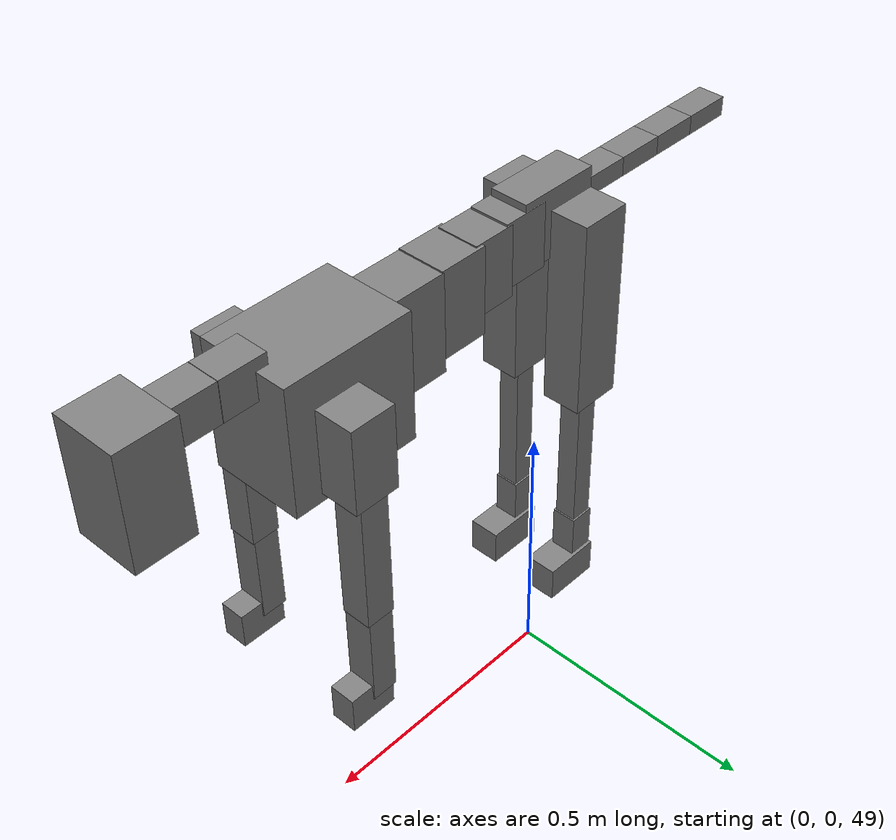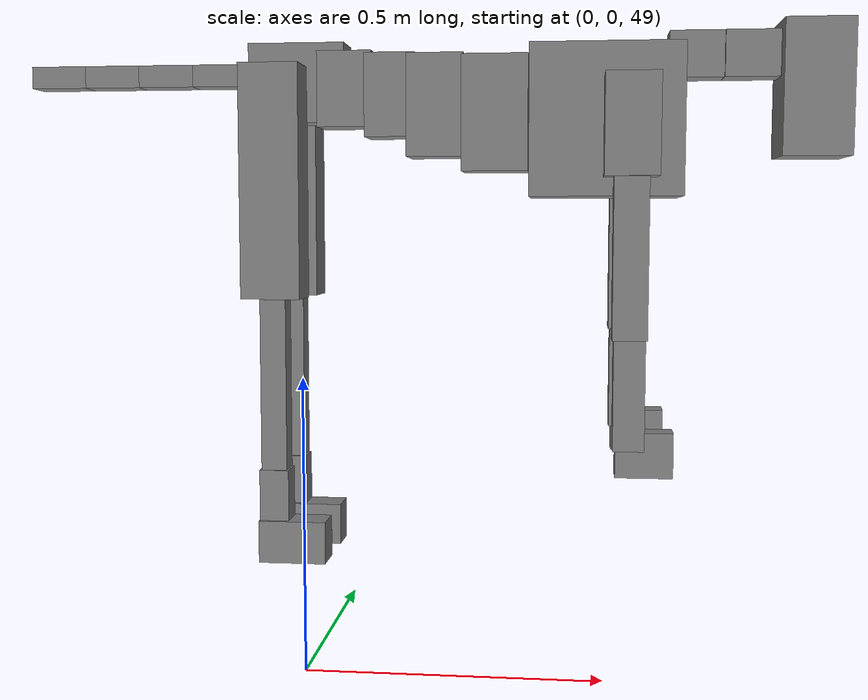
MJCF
<mujoco model="dog">

    <default>
        <joint armature="0.02" stiffness="1" damping="0.2" limited="true"/>
        <geom condim="3" friction="1 0.05 0.05" margin="0.01"/>
        <motor ctrllimited="true" ctrlrange="-1.0 1.0" forcelimited="true" gear="50"/>
    </default>

    <compiler inertiafromgeom="true" angle="radian"/>

    <option timestep="0.016" iterations="50" tolerance="1e-10" solver="Newton" jacobian="dense" cone="pyramidal"/>

    <size nconmax="20000" njmax="60000" nstack="5000000"/>
    <visual>
        <map force="0.1" zfar="30"/>
        <rgba haze="0.15 0.25 0.35 1"/>
        <quality shadowsize="2048"/>
        <global offwidth="800" offheight="800"/>
    </visual>

    <asset>
        <texture type="skybox" builtin="gradient" rgb1="0.3 0.5 0.7" rgb2="0 0 0" width="512" height="512"/>
        <texture name="texplane" type="2d" builtin="checker" rgb1=".2 .3 .4" rgb2=".1 0.15 0.2" width="512" height="512"
                 mark="cross" markrgb=".8 .8 .8"/>
        <texture name="texgeom" type="cube" builtin="flat" mark="cross" width="127" height="1278" rgb1="0.8 0.6 0.4"
                 rgb2="0.8 0.6 0.4" markrgb="1 1 1" random="0.01"/>

        <material name="matplane" reflectance="0.3" texture="texplane" texrepeat="1 1" texuniform="true"/>
        <material name="matgeom" texture="texgeom" texuniform="true" rgba="0.8 0.6 .4 1"/>
    </asset>

    <worldbody>
        <geom name="floor" pos="0 0 0" size="0 0 .25" type="plane" material="matplane" condim="3"/>

        <light directional="false" diffuse=".2 .2 .2" specular="0 0 0" pos="0 0 5" dir="0 0 -1" castshadow="false"/>
        <light mode="targetbodycom" target="torso" directional="false" diffuse=".8 .8 .8" specular="0.3 0.3 0.3"
               pos="0 0 4.0" dir="0 0 -1"/>

        <body name="root" pos="0 0 50">
            <freejoint name="root_1"/>
            <geom type="box" pos="0 0 -0.02" size="0.0774  0.0358  0.063" density="2030"/>

            <body name="spine1" pos="0.054 0 0">
                <joint name="spine1_y" axis="0 1 0" range="0 0.7" limited="true"/>
                <geom type="box" pos="0.02375 0 -0.03" size="0.04375  0.0375  0.05985" density="2030"/>

                <body name="spine2" pos="0.0612 0 0">
                    <joint name="spine2_y" axis="0 1 0" range="-0.15 0.15" limited="true"/>
                    <geom type="box" pos="0.03555  0  -0.04" size="0.04055  0.039  0.06615" density="2030"/>

                    <body name="spine3" pos="0.0730 0 0">
                        <joint name="spine3_y" axis="0 1 0" range="-0.15 0.15" limited="true"/>
                        <geom type="box" pos="0.03555  0  -0.057" size="0.04555  0.0445  0.081" density="2030"/>

                        <body name="spine4" pos="0.0780 0 0">
                            <joint name="spine4_y" axis="0 1 0" range="-0.15 0.15" limited="true"/>
                            <geom type="box" pos="0.05265  0  -0.07" size="0.05265  0.045  0.09135" density="2030"/>

                            <body name="torso" pos="0.1082 0 0">
                                <joint name="torso_y" axis="0 1 0" range="-0.15 0.15" limited="true"/>
                                <geom type="box" pos="0.11925  0  -0.085" size="0.11925  0.085  0.11745"
                                      density="2030"/>

                                <body name="neck1" pos="0.2160  0   0.0180">
                                    <joint name="neck1_y" axis="0 1 0" range="-1.2  -1" limited="true"/>
                                    <geom type="box" pos="0.0423  0  0" size="0.0423  0.03  0.036" density="2325"/>

                                    <body name="neck2" pos="0.0853  0  0">
                                        <joint name="neck2_y" axis="0 1 0" range="0.1  0" limited="true"/>
                                        <geom type="box" pos="0.0423  0  0" size="0.0423  0.03  0.036" density="2325"/>

                                        <body name="head" pos="0.0853  0  0">
                                            <joint name="head_y" axis="0 1 0" range="-0.3  -0.2" limited="true"/>
                                            <geom type="box" pos="0.0531  0  -0.055" size="0.0531  0.06  0.1044"
                                                  density="4030"/>

                                        </body>
                                    </body>
                                </body>

                                <body name="front_shoulder" pos="0.156  0   -0.0480">
                                    <joint name="front_shoulder_y" axis="0 1 0" range="-1 1.5" limited="true"/>
                                    <geom type="box" pos="0 0.13 -0.0498" size="0.0412  0.0352  0.0764" density="1158"/>
                                    <geom type="box" pos="0 -0.13 -0.0498" size="0.0412  0.0352  0.0764"
                                          density="1158"/>

                                    <body name="front_elbow" pos="0  0  -0.0996">
                                        <joint name="front_elbow_y" axis="0 1 0" range="-2 0" limited="true"/>
                                        <geom type="box" pos="0 0.13 -0.1363" size="0.0264  0.0270  0.1363"
                                              density="1081"/>
                                        <geom type="box" pos="0 -0.13 -0.1363" size="0.0264  0.0270  0.1363"
                                              density="1081"/>

                                        <body name="front_wrist" pos="0  0  -0.2727">
                                            <joint name="front_wrist_y" axis="0 1 0" range="-0.2 0" limited="true"/>
                                            <geom type="box" pos="0 0.13 -0.0771" size="0.0238  0.0265  0.0902"
                                                  density="1664"/>
                                            <geom type="box" pos="0 -0.13 -0.0771" size="0.0238  0.0265  0.0902"
                                                  density="1664"/>

                                            <body name="front_finger_end" pos="0  0  -0.1541">
                                                <joint name="front_finger_y" axis="0 1 0" range="-0.4 1"
                                                       limited="true"/>
                                                <geom type="box" pos="0.0238  0.13  -0.0194"
                                                      size="0.0436  0.0238  0.0344" density="1515"/>
                                                <geom type="box" pos="0.0238  -0.13  -0.0194"
                                                      size="0.0436  0.0238  0.0344" density="1515"/>

                                            </body>

                                        </body>
                                    </body>
                                </body>

                            </body>
                        </body>
                    </body>
                </body>
            </body>

            <body name="back_hip" pos="-0.03 0 -0.018">
                <joint name="back_hip_y" axis="0 1 0" range="-1.5 0.3" limited="true"/>
                <geom type="box" pos="0 0.07 -0.1613" size="0.0473  0.0371  0.1841" density="1154"/>
                <geom type="box" pos="0 -0.07 -0.1613" size="0.0473  0.0371  0.1841" density="1154"/>

                <body name="back_knee" pos="0  0  -0.3226">
                    <joint name="back_knee_y" axis="0 1 0" range="0 2.8" limited="true"/>
                    <geom type="box" pos="0 0.07 -0.1547" size="0.0206  0.0203  0.1702" density="1227"/>
                    <geom type="box" pos="0 -0.07 -0.1547" size="0.0206  0.0203  0.1702" density="1227"/>

                    <body name="back_ankle" pos="0  0  -0.3094">
                        <joint name="back_ankle_y" axis="0 1 0" range="-2.2 0" limited="true"/>
                        <geom type="box" pos="0 0.07 -0.0430" size="0.0235  0.0235  0.0542" density="1284"/>
                        <geom type="box" pos="0 -0.07 -0.0430" size="0.0235  0.0235  0.0542" density="1284"/>

                        <body name="back_toe_end" pos="0  0  -0.0859">
                            <joint name="back_toe_y" axis="0 1 0" range="-0.4 1" limited="true"/>
                            <geom type="box" pos="0.0296  0.07  -0.0190" size="0.0542  0.0296  0.0340" density="1515"/>
                            <geom type="box" pos="0.0296  -0.07  -0.0190" size="0.0542  0.0296  0.0340" density="1515"/>

                        </body>
                    </body>
                </body>
            </body>

            <body name="tail1" pos="-0.074 0 -0.006">
                <joint name="tail1_y" axis="0 1 0" range="-0.2 0.2" limited="true"/>
                <geom type="box" pos="-0.0536  0  0" size="0.045  0.025  0.0175" density="1587"/>

                <body name="tail2" pos="-0.09 0 0">
                    <joint name="tail2_y" axis="0 1 0" range="-0.2 0.2" limited="true"/>
                    <geom type="box" pos="-0.0536  0  0" size="0.045  0.025  0.0175" density="1587"/>

                    <body name="tail3" pos="-0.09 0 0">
                        <joint name="tail3_y" axis="0 1 0" range="-0.2 0.2" limited="true"/>
                        <geom type="box" pos="-0.0536  0  0" size="0.045  0.025  0.0175" density="1587"/>

                        <body name="tail4" pos="-0.09 0 0">
                            <joint name="tail4_y" axis="0 1 0" range="-0.2 0.2" limited="true"/>
                            <geom type="box" pos="-0.0536  0  0" size="0.045  0.025  0.0175" density="1587"/>

                        </body>
                    </body>
                </body>
            </body>
        </body>
    </worldbody>

    <actuator>
        <motor joint="spine1_y" forcerange="-150 150     "/>
        <motor joint="spine2_y" forcerange="-150 150     "/>
        <motor joint="spine3_y" forcerange="-150 150     "/>
        <motor joint="spine4_y" forcerange="-150 150     "/>
        <motor joint="torso_y" forcerange="-150 150     "/>
        <motor joint="neck1_y" forcerange="-100 100       "/>
        <motor joint="neck2_y" forcerange="-100 100       "/>
        <motor joint="head_y" forcerange="-150 150       "/>
        <motor joint="front_shoulder_y" forcerange="-162.65 172.02"/>
        <motor joint="front_elbow_y" forcerange="-118.65 177.70"/>
        <motor joint="front_wrist_y" forcerange="-77.94 133.80"/>
        <motor joint="front_finger_y" forcerange="-31.18 55.56"/>
        <motor joint="back_hip_y" forcerange="-299.97 395.00"/>
        <motor joint="back_knee_y" forcerange="-245.88 249.78"/>
        <motor joint="back_angle_y" forcerange="-113.12 163.21"/>
        <motor joint="back_toe_y" forcerange="-60.60 95.91"/>
        <motor joint="tail1_y" forcerange="-50 50     "/>
        <motor joint="tail2_y" forcerange="-50 50     "/>
        <motor joint="tail3_y" forcerange="-50 50     "/>
        <motor joint="tail4_y" forcerange="-50 50     "/>
    </actuator>
</mujoco>
